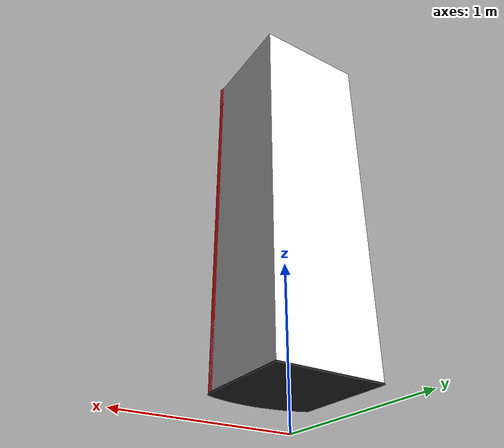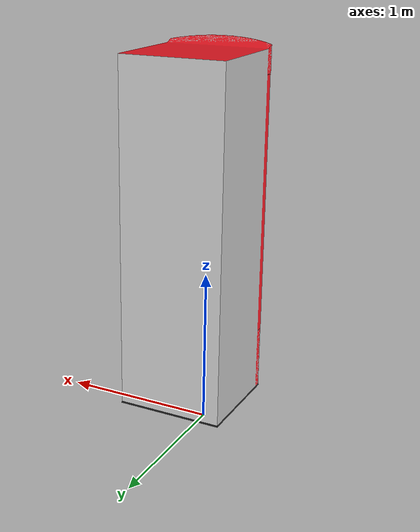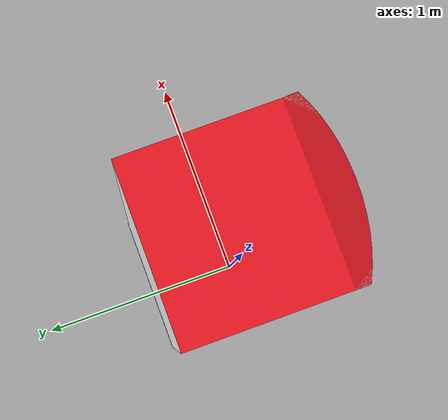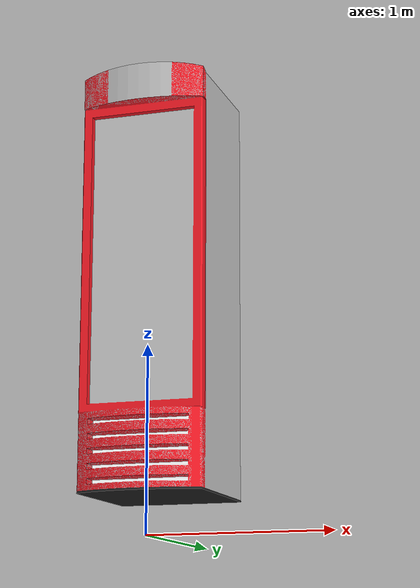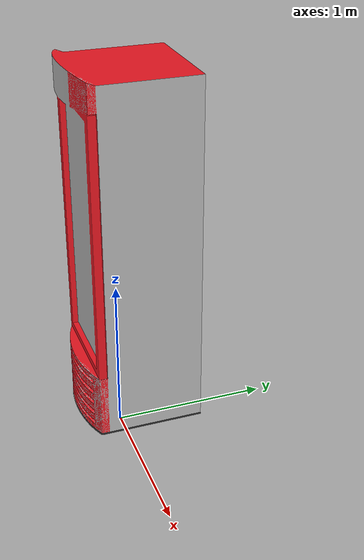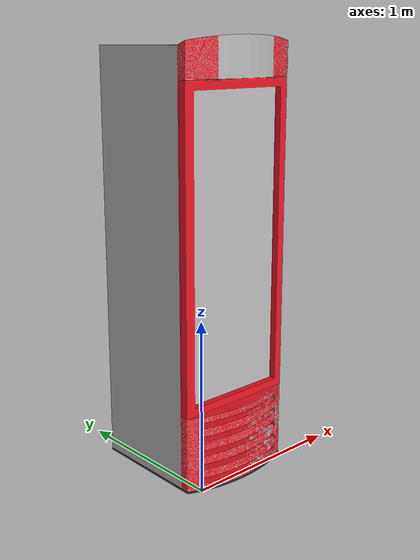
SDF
<?xml version='1.0'?>
<sdf version='1.6'>
  <model name='freezer'>
    <static>true</static>
    <link name='link_0'>
      <pose frame=''>-0 -0 0 0 -0 0</pose>
      <visual name='visual'>
        <pose frame=''>-0.3 -0.3 0.2 0 -0 0</pose>
        <geometry>
          <mesh>
            <uri>file://env_machine/freezer/meshes/model.dae</uri>
            <scale>1 1 1</scale>
          </mesh>
        </geometry>
        <transparency>0</transparency>
        <cast_shadows>1</cast_shadows>
      </visual>
      <collision name='collision'>
        <laser_retro>0</laser_retro>
        <max_contacts>10</max_contacts>
        <pose frame=''>-0.3 -0.3 0.2 0 -0 0</pose>
        <geometry>
          <mesh>
            <uri>file://env_machine/freezer/meshes/model.dae</uri>
            <scale>1 1 1</scale>
          </mesh>
        </geometry>
      </collision>
    </link>
  </model>
</sdf>
